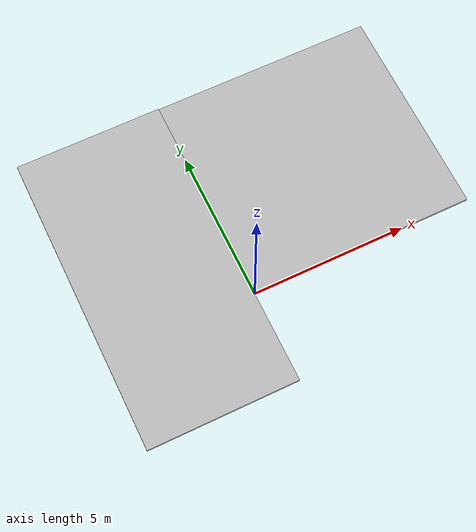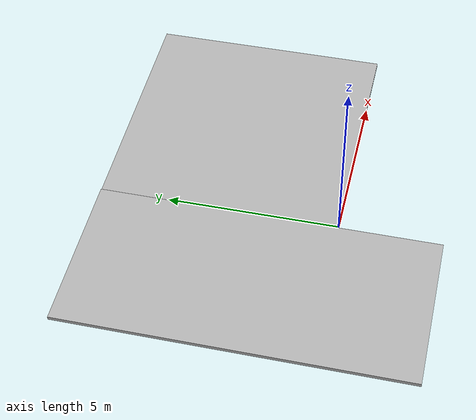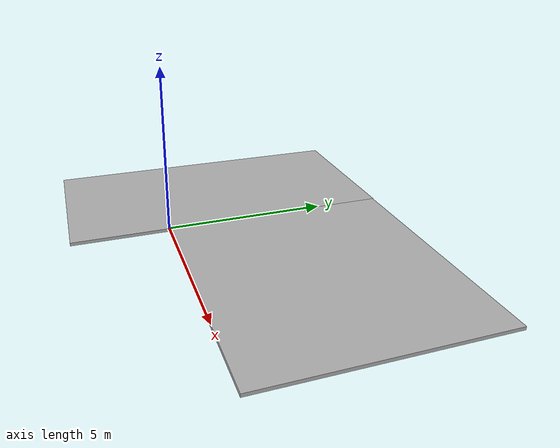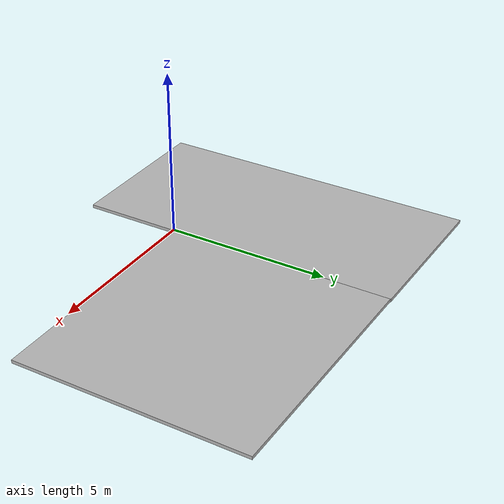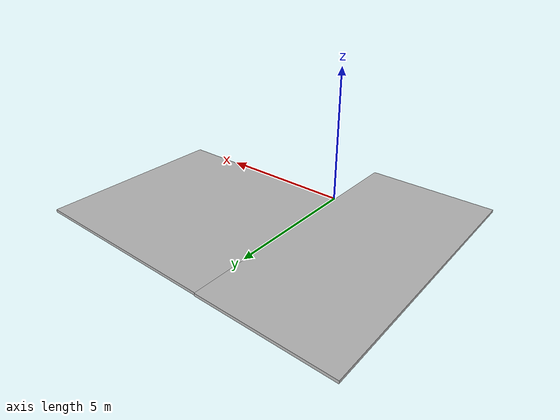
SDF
<?xml version='1.0'?>
<sdf version='1.6'><world name='default'>
    <light name='sun_light' type='directional'>
      <pose frame=''>0 0 10 0 -0 0</pose>
      <diffuse>0.5 0.5 0.5 1</diffuse>
      <specular>0.1 0.1 0.1 1</specular>
      <direction>0.1 0.1 -0.9</direction>
      <attenuation>
        <range>20</range>
        <constant>0.5</constant>
        <linear>0.01</linear>
        <quadratic>0.001</quadratic>
      </attenuation>
      <cast_shadows>1</cast_shadows>
    </light>
		<model name="ground_1">
			<static>true</static>
			<link name="link">
				<collision name="collision">
					<geometry>
						<box>
							<size>7.3 7.04 0.1</size>
						</box>
					</geometry>
				</collision>

				<visual name="visual">
					<geometry>
						<box>
							<size>7.3 7.04 0.1</size>
						</box>
					</geometry>
				</visual>
			</link>
			<pose>3.65 3.52 -0.06 0 0 0</pose>
		</model>
		<model name="ground_2">
			<static>true</static>
			<link name="link">
				<collision name="collision">
					<geometry>
						<box>
							<size>4.85 10.04 0.1</size>
						</box>
					</geometry>
					</collision>
					<visual name="visual">
					<geometry>
						<box>
							<size>4.85 10.04 0.1</size>
						</box>
					</geometry>
				</visual>
			</link>
			<pose>-2.425 2.04 -0.06 0 0 0</pose>
		</model>
	</world>
</sdf>
